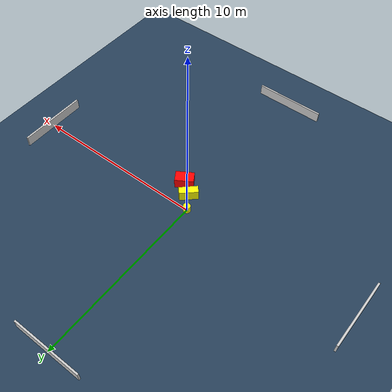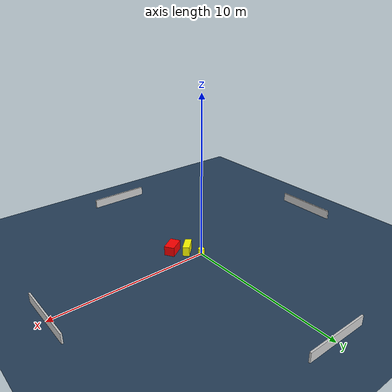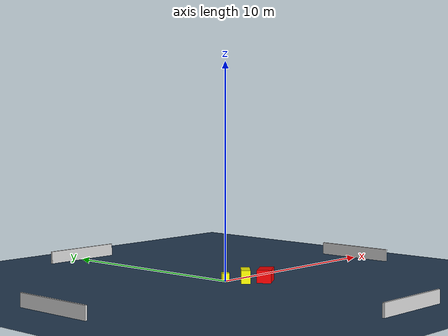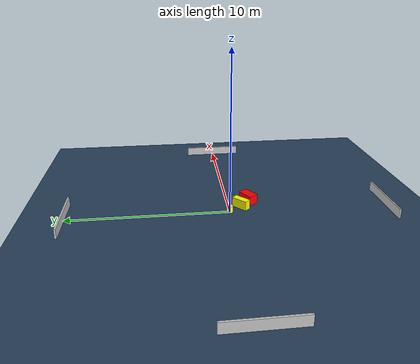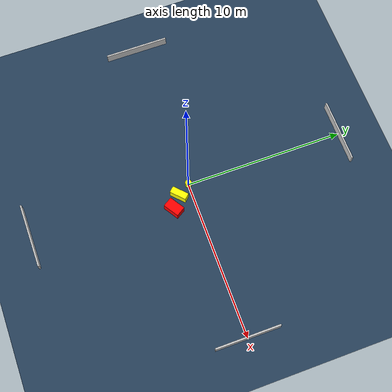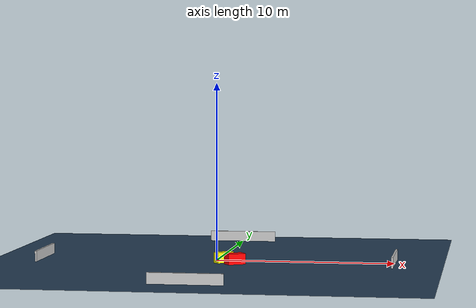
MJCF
<?xml version="1.0" ?>
<mujoco model="generated_environment">
  <option timestep="0.01" integrator="RK4" cone="elliptic"/>
  <default>
    <geom density="1"/>
  </default>
  <asset>
    <texture builtin="gradient" height="3072" name="skybox" rgb1="0.3 0.5 0.7" rgb2="0 0 0" type="skybox" width="512"/>
    <texture builtin="checker" height="300" name="groundplane" rgb1="0.2 0.3 0.4" rgb2="0.1 0.2 0.3" type="2d" width="300"/>
    <material name="groundplane" reflectance="0.2" texrepeat="5 5" texture="groundplane"/>
  </asset>
  <worldbody>
    <light dir="0 0 -1" directional="true" pos="0 0 1.5"/>
    <geom condim="3" friction="0.5 0.005 0.001" material="groundplane" name="floor" pos="0 0 0" size="0 0 0.05" type="plane"/>
    <body name="walls">
      <geom name="wall_1" condim="4" pos="-10.0 0.0 0.3" rgba="0.800000011920929 0.800000011920929 0.800000011920929 1.0" size="0.05 2.0 0.3" type="box"/>
      <geom name="wall_2" condim="4" pos="10.0 0.0 0.3" rgba="0.800000011920929 0.800000011920929 0.800000011920929 1.0" size="0.05 2.0 0.3" type="box"/>
      <geom name="wall_3" condim="4" pos="0.0 -10.0 0.3" rgba="0.800000011920929 0.800000011920929 0.800000011920929 1.0" size="2.0 0.05 0.3" type="box"/>
      <geom name="wall_4" condim="4" pos="0.0 10.0 0.3" rgba="0.800000011920929 0.800000011920929 0.800000011920929 1.0" size="2.0 0.05 0.3" type="box"/>
    </body>
    <body name="robot">
      <joint name="joint_x" type="slide" pos="0 0 0" axis="1 0 0"/>
      <joint name="joint_y" type="slide" pos="0 0 0" axis="0 1 0"/>
      <geom name="robot" type="cylinder" pos="0.0 0.0 0.2" size="0.2 0.2 0.0" mass="5.0" friction="1.0 0.005 0.0001" condim="4" rgba="1.0 1.0 0.0 1.0"/>
    </body>
    <body name="obstacle_1_movable">
      <geom name="obstacle_1_movable" condim="4" pos="0.5050113365198694 -0.777035584650286 0.3" euler="0 0 313.5108315212027" friction="0.0 0.005 0.001" rgba="1.0 1.0 0.0 1.0" size="0.2111842317310848 0.5246961559074867 0.3" type="box" mass="0.1"/>
      <joint type="free"/>
    </body>
    <body name="obstacle_2_static">
      <geom name="obstacle_2_static" condim="4" pos="1.2317953174200018 -1.3574368233875551 0.3" euler="0 0 122.03021714263744" friction="0.0 0.005 0.001" rgba="1.0 0.0 0.0 1.0" size="0.3215828766925022 0.5189887372863602 0.3" type="box"/>
    </body>
  </worldbody>
  <actuator>
    <motor name="actuator_x" joint="joint_x" gear="1" ctrlrange="-1 1"/>
    <motor name="actuator_y" joint="joint_y" gear="1" ctrlrange="-1 1"/>
  </actuator>
</mujoco>
